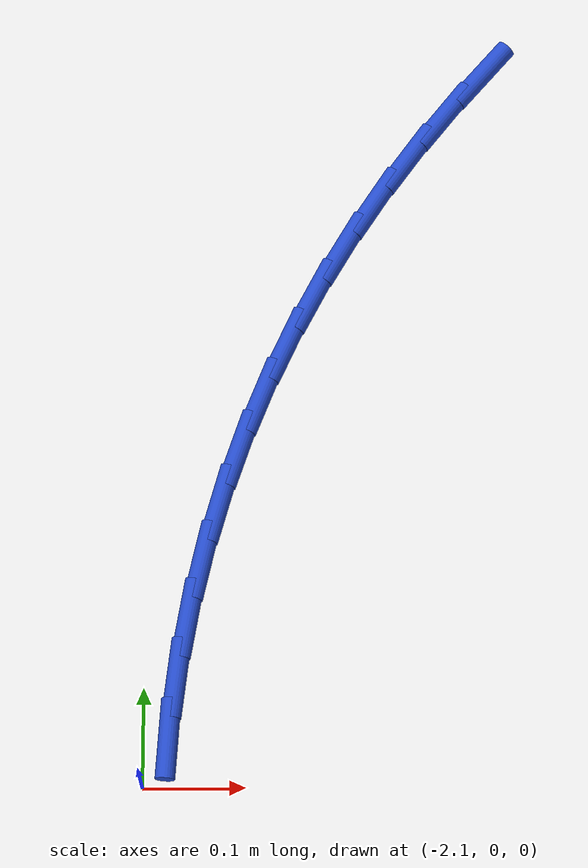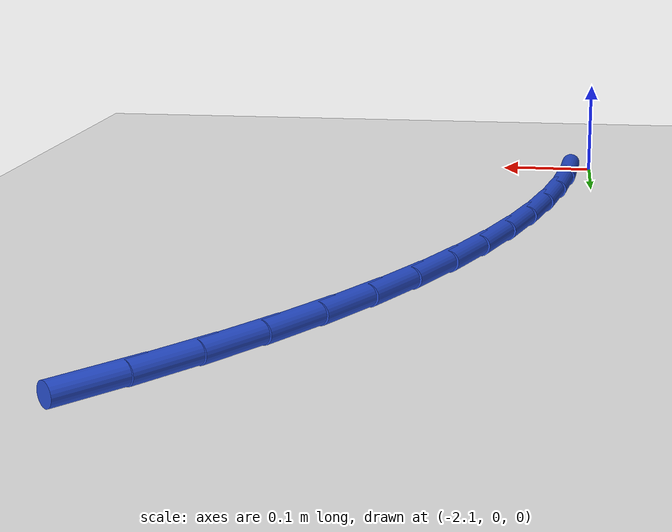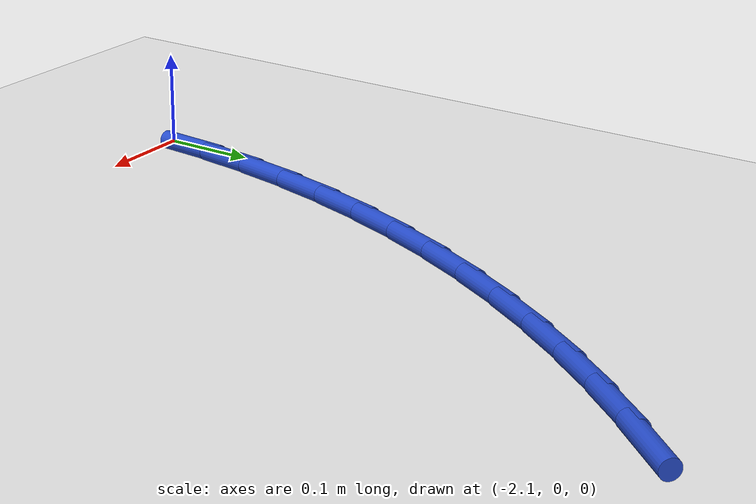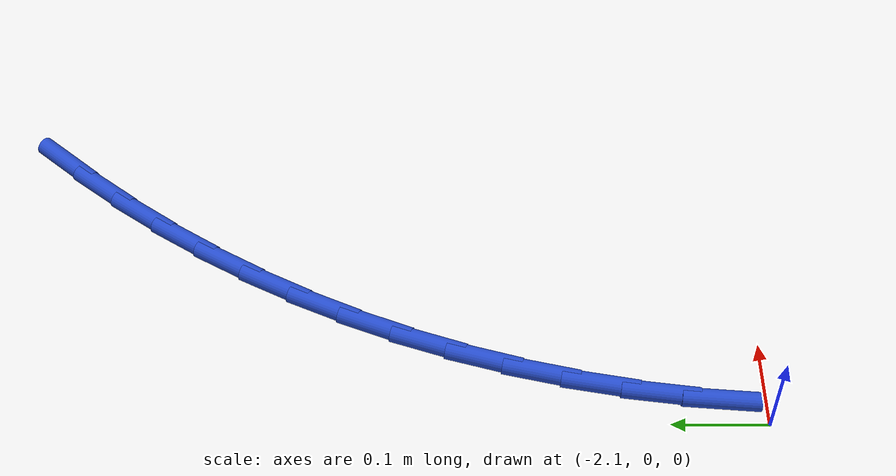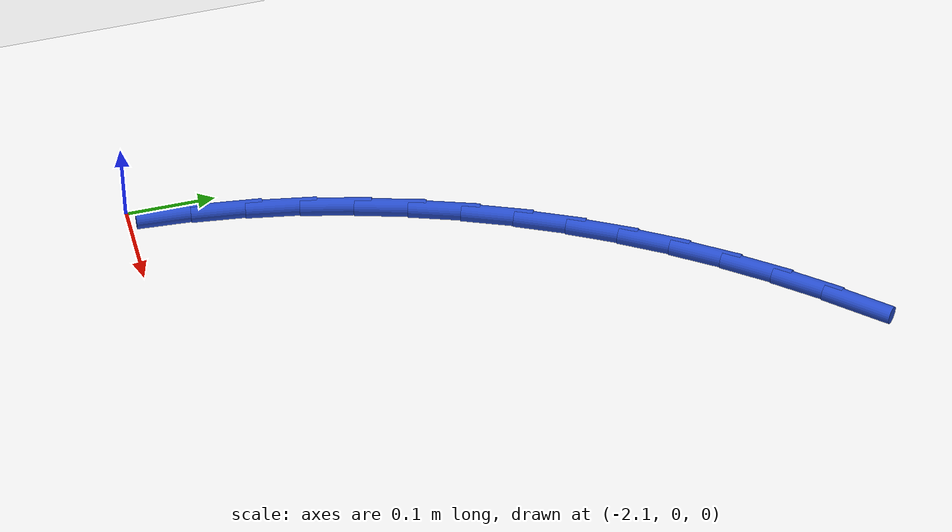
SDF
<sdf version="1.6">
 <world name="default">
  <model name="ground_plane">
   <static>1</static>
   <link name="link">
    <collision name="collision">
     <geometry><plane><normal>0 0 1</normal><size>100 100</size></plane></geometry>
     <surface><friction><ode><mu>100</mu><mu2>50</mu2></ode></friction></surface>
    </collision>
    <visual name="visual">
     <cast_shadows>0</cast_shadows>
     <geometry><plane><normal>0 0 1</normal><size>100 100</size></plane></geometry>
     <material>
      <script><uri>file://media/materials/scripts/gazebo.material</uri><name>Gazebo/WhiteGlow</name></script>
     </material>
    </visual>
   </link>
  </model>
  <model name="line">
   <link name="link_41">
    <pose>-1.7563408508031844 0.7434750647458236 0.01 0 1.57 0.8521847467096804</pose>
    <collision name="collision">
     <geometry><cylinder><radius>0.01</radius><length>0.08</length></cylinder></geometry>
    </collision>
    <visual name="visual">
     <material>
      <script><name>Gazebo/Blue</name><uri>file://media/materials/scripts/gazebo.material</uri></script>
     </material>
     <geometry><cylinder><radius>0.01</radius><length>0.08</length></cylinder></geometry>
    </visual>
   </link>
   <link name="link_42">
    <pose>-1.795988705860137 0.6981432546966556 0.01 0 1.57 0.895580640770833</pose>
    <collision name="collision">
     <geometry><cylinder><radius>0.01</radius><length>0.08</length></cylinder></geometry>
    </collision>
    <visual name="visual">
     <material>
      <script><name>Gazebo/Blue</name><uri>file://media/materials/scripts/gazebo.material</uri></script>
     </material>
     <geometry><cylinder><radius>0.01</radius><length>0.08</length></cylinder></geometry>
    </visual>
   </link>
   <link name="link_43">
    <pose>-1.8333842737630017 0.6514442607078766 0.01 0 1.57 0.940613345909585</pose>
    <collision name="collision">
     <geometry><cylinder><radius>0.01</radius><length>0.08</length></cylinder></geometry>
    </collision>
    <visual name="visual">
     <material>
      <script><name>Gazebo/Blue</name><uri>file://media/materials/scripts/gazebo.material</uri></script>
     </material>
     <geometry><cylinder><radius>0.01</radius><length>0.08</length></cylinder></geometry>
    </visual>
   </link>
   <link name="link_44">
    <pose>-1.8684566801866338 0.6033600191361844 0.01 0 1.57 0.9871898991046135</pose>
    <collision name="collision">
     <geometry><cylinder><radius>0.01</radius><length>0.08</length></cylinder></geometry>
    </collision>
    <visual name="visual">
     <material>
      <script><name>Gazebo/Blue</name><uri>file://media/materials/scripts/gazebo.material</uri></script>
     </material>
     <geometry><cylinder><radius>0.01</radius><length>0.08</length></cylinder></geometry>
    </visual>
   </link>
   <link name="link_45">
    <pose>-1.9011350508058904 0.5538724663382779 0.01 0 1.57 1.0351842998322847</pose>
    <collision name="collision">
     <geometry><cylinder><radius>0.01</radius><length>0.08</length></cylinder></geometry>
    </collision>
    <visual name="visual">
     <material>
      <script><name>Gazebo/Blue</name><uri>file://media/materials/scripts/gazebo.material</uri></script>
     </material>
     <geometry><cylinder><radius>0.01</radius><length>0.08</length></cylinder></geometry>
    </visual>
   </link>
   <link name="link_46">
    <pose>-1.9313485112956283 0.5029635386708554 0.01 0 1.57 1.0844368592190297</pose>
    <collision name="collision">
     <geometry><cylinder><radius>0.01</radius><length>0.08</length></cylinder></geometry>
    </collision>
    <visual name="visual">
     <material>
      <script><name>Gazebo/Blue</name><uri>file://media/materials/scripts/gazebo.material</uri></script>
     </material>
     <geometry><cylinder><radius>0.01</radius><length>0.08</length></cylinder></geometry>
    </visual>
   </link>
   <link name="link_47">
    <pose>-1.959026187330704 0.4506151724906158 0.01 0 1.57 1.1347551919808134</pose>
    <collision name="collision">
     <geometry><cylinder><radius>0.01</radius><length>0.08</length></cylinder></geometry>
    </collision>
    <visual name="visual">
     <material>
      <script><name>Gazebo/Blue</name><uri>file://media/materials/scripts/gazebo.material</uri></script>
     </material>
     <geometry><cylinder><radius>0.01</radius><length>0.08</length></cylinder></geometry>
    </visual>
   </link>
   <link name="link_48">
    <pose>-1.9840972045859733 0.3968093041542572 0.01 0 1.57 1.185917069368349</pose>
    <collision name="collision">
     <geometry><cylinder><radius>0.01</radius><length>0.08</length></cylinder></geometry>
    </collision>
    <visual name="visual">
     <material>
      <script><name>Gazebo/Blue</name><uri>file://media/materials/scripts/gazebo.material</uri></script>
     </material>
     <geometry><cylinder><radius>0.01</radius><length>0.08</length></cylinder></geometry>
    </visual>
   </link>
   <link name="link_49">
    <pose>-2.006490688736293 0.3415278700184783 0.01 0 1.57 1.2376062444728528</pose>
    <collision name="collision">
     <geometry><cylinder><radius>0.01</radius><length>0.08</length></cylinder></geometry>
    </collision>
    <visual name="visual">
     <material>
      <script><name>Gazebo/Blue</name><uri>file://media/materials/scripts/gazebo.material</uri></script>
     </material>
     <geometry><cylinder><radius>0.01</radius><length>0.08</length></cylinder></geometry>
    </visual>
   </link>
   <link name="link_50">
    <pose>-2.026134427745409 0.28476933539290716 0.01 0 1.57 1.2890523263940987</pose>
    <collision name="collision">
     <geometry><cylinder><radius>0.01</radius><length>0.08</length></cylinder></geometry>
    </collision>
    <visual name="visual">
     <material>
      <script><name>Gazebo/Blue</name><uri>file://media/materials/scripts/gazebo.material</uri></script>
     </material>
     <geometry><cylinder><radius>0.01</radius><length>0.08</length></cylinder></geometry>
    </visual>
   </link>
   <link name="link_51">
    <pose>-2.04294278490332 0.22669804280725162 0.01 0 1.57 1.340217483268588</pose>
    <collision name="collision">
     <geometry><cylinder><radius>0.01</radius><length>0.08</length></cylinder></geometry>
    </collision>
    <visual name="visual">
     <material>
      <script><name>Gazebo/Blue</name><uri>file://media/materials/scripts/gazebo.material</uri></script>
     </material>
     <geometry><cylinder><radius>0.01</radius><length>0.08</length></cylinder></geometry>
    </visual>
   </link>
   <link name="link_52">
    <pose>-2.0568223755997455 0.16757406897324523 0.01 0 1.57 1.3915304379478584</pose>
    <collision name="collision">
     <geometry><cylinder><radius>0.01</radius><length>0.08</length></cylinder></geometry>
    </collision>
    <visual name="visual">
     <material>
      <script><name>Gazebo/Blue</name><uri>file://media/materials/scripts/gazebo.material</uri></script>
     </material>
     <geometry><cylinder><radius>0.01</radius><length>0.08</length></cylinder></geometry>
    </visual>
   </link>
   <link name="link_53">
    <pose>-2.067679721548957 0.10765864807006352 0.01 0 1.57 1.443414007333444</pose>
    <collision name="collision">
     <geometry><cylinder><radius>0.01</radius><length>0.08</length></cylinder></geometry>
    </collision>
    <visual name="visual">
     <material>
      <script><name>Gazebo/Blue</name><uri>file://media/materials/scripts/gazebo.material</uri></script>
     </material>
     <geometry><cylinder><radius>0.01</radius><length>0.08</length></cylinder></geometry>
    </visual>
   </link>
   <link name="link_54">
    <pose>-2.075421344465226 0.04721301427688211 0.01 0 1.57 1.4962832892955067</pose>
    <collision name="collision">
     <geometry><cylinder><radius>0.01</radius><length>0.08</length></cylinder></geometry>
    </collision>
    <visual name="visual">
     <material>
      <script><name>Gazebo/Blue</name><uri>file://media/materials/scripts/gazebo.material</uri></script>
     </material>
     <geometry><cylinder><radius>0.01</radius><length>0.08</length></cylinder></geometry>
    </visual>
   </link>
  </model>
 </world>
</sdf>
